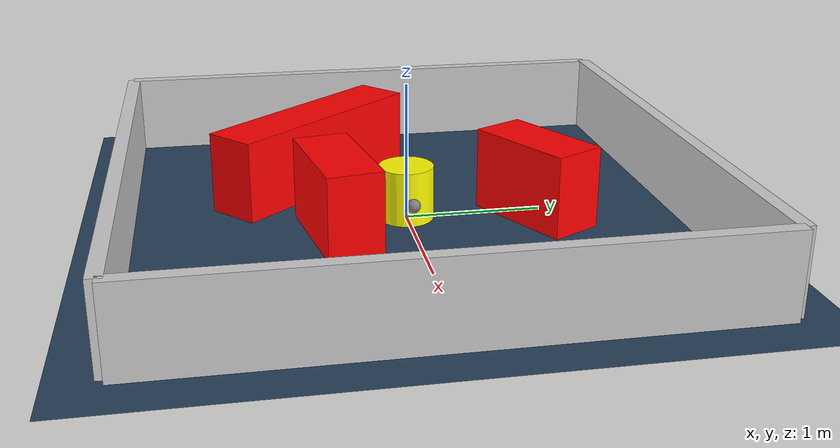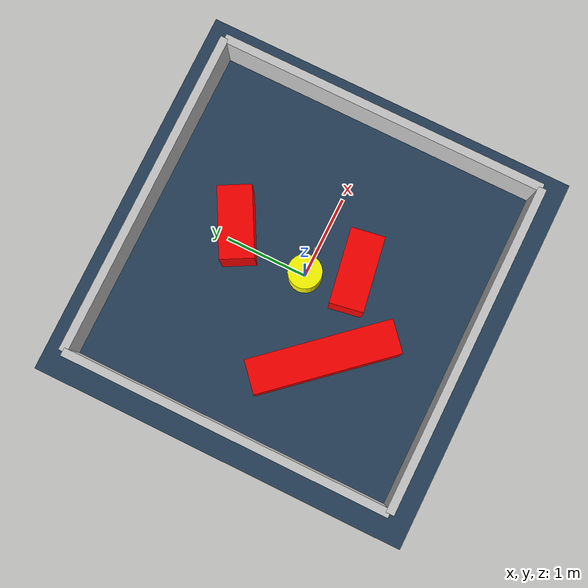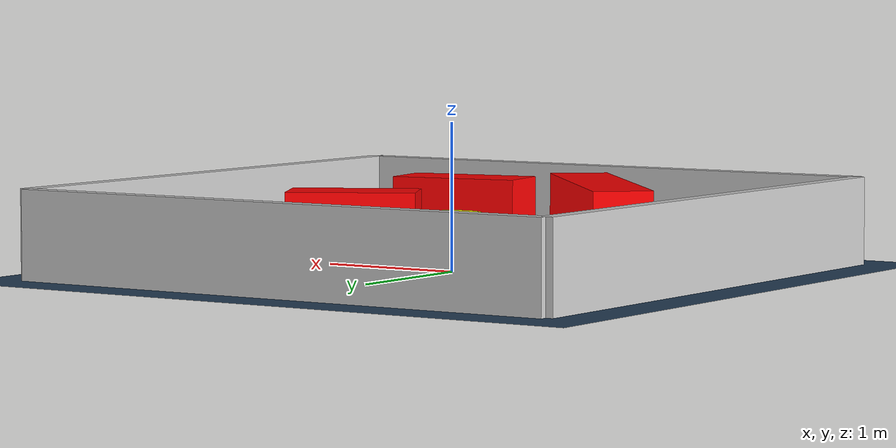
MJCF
<?xml version="1.0" ?>
<mujoco model="generated_environment">
  <option timestep="0.01" integrator="RK4" cone="elliptic"/>
  <default>
    <geom density="1"/>
  </default>
  <asset>
    <texture builtin="gradient" height="3072" rgb1="0.3 0.5 0.7" rgb2="0 0 0" type="skybox" width="512"/>
    <texture builtin="checker" height="300" mark="edge" markrgb="0.8 0.8 0.8" name="groundplane" rgb1="0.2 0.3 0.4" rgb2="0.1 0.2 0.3" type="2d" width="300"/>
    <material name="groundplane" reflectance="0.2" texrepeat="5 5" texture="groundplane" texuniform="true"/>
    <material name="robot" rgba="0.0 1.0 0.0 1"/>
  </asset>
  <worldbody>
    <light dir="0 0 -1" directional="true" pos="0 0 1.5"/>
    <geom condim="4" friction="1.0 0.005 0.001" material="groundplane" name="floor" size="0 0 0.05" type="plane"/>
    <body name="walls">
      <geom name="wall_1" condim="4" pos="-2.0 0.0 0.3" rgba="0.800000011920929 0.800000011920929 0.800000011920929 1.0" size="0.05 2.0 0.3" type="box"/>
      <geom name="wall_2" condim="4" pos="2.0 0.0 0.3" rgba="0.800000011920929 0.800000011920929 0.800000011920929 1.0" size="0.05 2.0 0.3" type="box"/>
      <geom name="wall_3" condim="4" pos="0.0 -2.0 0.3" rgba="0.800000011920929 0.800000011920929 0.800000011920929 1.0" size="2.0 0.05 0.3" type="box"/>
      <geom name="wall_4" condim="4" pos="0.0 2.0 0.3" rgba="0.800000011920929 0.800000011920929 0.800000011920929 1.0" size="2.0 0.05 0.3" type="box"/>
    </body>
    <body name="robot">
      <joint name="joint_x" type="slide" pos="0 0 0" axis="1 0 0"/>
      <joint name="joint_y" type="slide" pos="0 0 0" axis="0 1 0"/>
      <geom name="robot" type="sphere" pos="0.3 0.0 0.2" size="0.05" mass="5." friction="1.0 0.005 0.0001" condim="4" rgba="0.5 0.5 0.5 1.0"/>
      <site name="sensor_ball"/>
    </body>
    <body name="obstacle_movable_1">
      <geom name="obstacle_movable_1" condim="4" pos="0.0 0.0 0.2" euler="0 0 0.0" friction="1.0 0.005 0.001" rgba="1.0 1.0 0.0 1.0" size="0.2 0.2 0.0" type="cylinder" mass="0.1"/>
      <joint type="free"/>
    </body>
    <body name="obstacle_2_static">
      <geom name="obstacle_2_static" condim="4" pos="0.14124121565415804 0.9347489001568696 0.3" euler="0 0 28.299470887612923" friction="1.0 0.005 0.001" rgba="1 0 0 1" size="0.4211069440414422 0.2 0.3" type="box"/>
    </body>
    <body name="obstacle_3_static">
      <geom name="obstacle_3_static" condim="4" pos="-0.7856883355601745 -0.6116163763468643 0.3" euler="0 0 311.4351457847793" friction="1.0 0.005 0.001" rgba="1 0 0 1" size="0.8538980305348525 0.2 0.3" type="box"/>
    </body>
    <body name="obstacle_4_static">
      <geom name="obstacle_4_static" condim="4" pos="0.24989909941470612 -0.5273460738502198 0.3" euler="0 0 189.57368667378387" friction="1.0 0.005 0.001" rgba="1 0 0 1" size="0.444418539648186 0.2 0.3" type="box"/>
    </body>
  </worldbody>
  <actuator>
    <motor name="actuator_x" joint="joint_x" gear="1" ctrlrange="-1 1"/>
    <motor name="actuator_y" joint="joint_y" gear="1" ctrlrange="-1 1"/>
  </actuator>
</mujoco>
